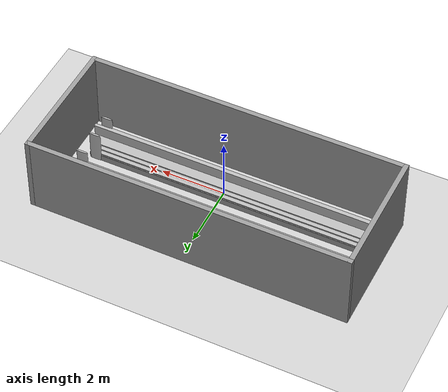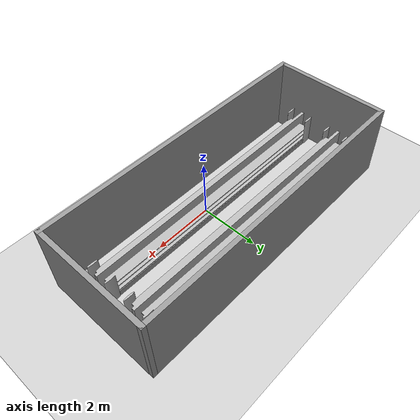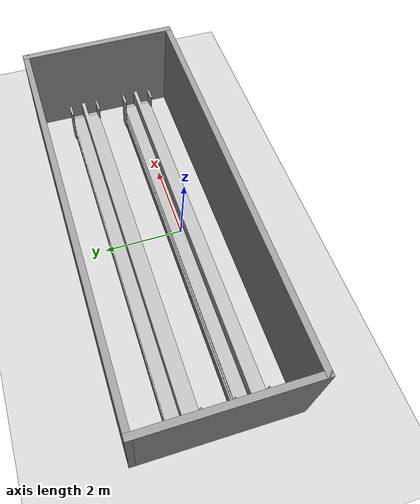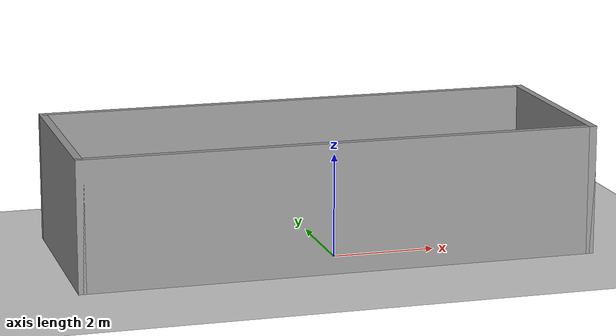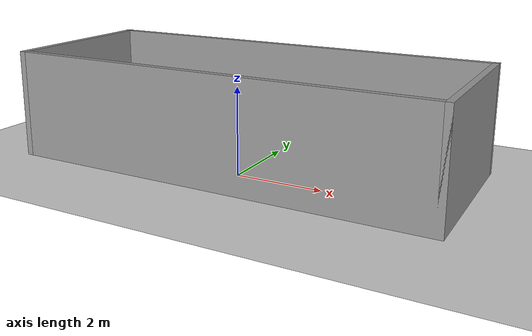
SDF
<sdf version="1.7">
 <world name="default">
  <model name="ground_plane">
   <static>1</static>
   <link name="link">
    <collision name="collision">
     <geometry><plane><normal>0 0 1</normal><size>100 100</size></plane></geometry>
     <surface><friction><ode><mu>100</mu><mu2>50</mu2></ode></friction></surface>
    </collision>
    <visual name="visual">
     <cast_shadows>0</cast_shadows>
     <geometry><plane><normal>0 0 1</normal><size>100 100</size></plane></geometry>
     <material>
      <script><uri>file://media/materials/scripts/gazebo.material</uri><name>Gazebo/Grey</name></script>
     </material>
    </visual>
   </link>
  </model>
  <light name="sun" type="directional">
   <pose>0 0 10 0 -0 0</pose>
   <diffuse>0.8 0.8 0.8 1</diffuse>
   <specular>0.2 0.2 0.2 1</specular>
   <attenuation>
    <range>1000</range>
    <constant>0.9</constant>
    <linear>0.01</linear>
    <quadratic>0.001</quadratic>
   </attenuation>
   <direction>-0.5 0.1 -0.9</direction>
   <spot><inner_angle>0</inner_angle><outer_angle>0</outer_angle><falloff>0</falloff></spot>
  </light>
  <model name="my_mesh">
   <pose>-0.390857 0.01507 0 0 -0 0</pose>
   <static>1</static>
   <link name="body">
    <visual name="visual"><geometry><mesh><uri>file://shelf.dae</uri></mesh></geometry></visual>
   </link>
  </model>
  <gravity>0 0 -9.8</gravity>
  <magnetic_field>6e-06 2.3e-05 -4.2e-05</magnetic_field>
  <atmosphere type="adiabatic"/>
  <physics type="ode">
   <max_step_size>0.001</max_step_size>
   <real_time_factor>1</real_time_factor>
   <real_time_update_rate>1000</real_time_update_rate>
  </physics>
  <scene><ambient>0.4 0.4 0.4 1</ambient><background>0.7 0.7 0.7 1</background><shadows>1</shadows></scene>
  <audio><device>default</device></audio>
  <spherical_coordinates>
   <surface_model>EARTH_WGS84</surface_model>
   <latitude_deg>0</latitude_deg>
   <longitude_deg>0</longitude_deg>
   <elevation>0</elevation>
   <heading_deg>0</heading_deg>
  </spherical_coordinates>
  <model name="Stall4x10">
   <pose>1.16004 0.83872 0 0 -0 0</pose>
   <link name="Wall_6">
    <collision name="Wall_6_Collision">
     <geometry><box><size>4 0.15 2.5</size></box></geometry>
     <pose>0 0 1.25 0 -0 0</pose>
    </collision>
    <visual name="Wall_6_Visual">
     <pose>0 0 1.25 0 -0 0</pose>
     <geometry><box><size>4 0.15 2.5</size></box></geometry>
     <material>
      <script><uri>file://media/materials/scripts/gazebo.material</uri><name>Gazebo/Grey</name></script>
      <ambient>1 1 1 1</ambient>
     </material>
     <meta><layer>0</layer></meta>
    </visual>
    <pose>-6.2376 -0 0 0 -0 -1.5708</pose>
   </link>
   <link name="Wall_7">
    <collision name="Wall_7_Collision">
     <geometry><box><size>10 0.15 2.5</size></box></geometry>
     <pose>0 0 1.25 0 -0 0</pose>
    </collision>
    <visual name="Wall_7_Visual">
     <pose>0 0 1.25 0 -0 0</pose>
     <geometry><box><size>10 0.15 2.5</size></box></geometry>
     <material>
      <script><uri>file://media/materials/scripts/gazebo.material</uri><name>Gazebo/Grey</name></script>
      <ambient>1 1 1 1</ambient>
     </material>
     <meta><layer>0</layer></meta>
    </visual>
    <pose>-1.3126 -1.925 0 0 -0 0</pose>
   </link>
   <link name="Wall_8">
    <collision name="Wall_8_Collision">
     <geometry><box><size>4 0.15 2.5</size></box></geometry>
     <pose>0 0 1.25 0 -0 0</pose>
    </collision>
    <visual name="Wall_8_Visual">
     <pose>0 0 1.25 0 -0 0</pose>
     <geometry><box><size>4 0.15 2.5</size></box></geometry>
     <material>
      <script><uri>file://media/materials/scripts/gazebo.material</uri><name>Gazebo/Grey</name></script>
      <ambient>1 1 1 1</ambient>
     </material>
     <meta><layer>0</layer></meta>
    </visual>
    <pose>3.6124 -0 0 0 -0 1.5708</pose>
   </link>
   <link name="Wall_9">
    <collision name="Wall_9_Collision">
     <geometry><box><size>10 0.15 2.5</size></box></geometry>
     <pose>0 0 1.25 0 -0 0</pose>
    </collision>
    <visual name="Wall_9_Visual">
     <pose>0 0 1.25 0 -0 0</pose>
     <geometry><box><size>10 0.15 2.5</size></box></geometry>
     <material>
      <script><uri>file://media/materials/scripts/gazebo.material</uri><name>Gazebo/Grey</name></script>
      <ambient>1 1 1 1</ambient>
     </material>
     <meta><layer>0</layer></meta>
    </visual>
    <pose>-1.3126 1.925 0 0 -0 3.14159</pose>
   </link>
   <static>1</static>
  </model>
  <model name="my_mesh_clone">
   <pose>-0.392322 1.52308 0 0 -0 0</pose>
   <static>1</static>
   <link name="body">
    <visual name="visual"><geometry><mesh><uri>file://shelf.dae</uri></mesh></geometry></visual>
    <self_collide>1</self_collide>
   </link>
  </model>
  <model name="self_col">
   <pose>-0.42535 0.766988 0 0 -0 0</pose>
   <link name="Wall_0">
    <collision name="Wall_0_Collision">
     <geometry><box><size>9.2 0.75 0.2</size></box></geometry>
     <pose>0 0 0.1 0 -0 0</pose>
    </collision>
    <visual name="Wall_0_Visual">
     <pose>0 0 0.1 0 -0 0</pose>
     <geometry><box><size>9.2 0.75 0.2</size></box></geometry>
     <material>
      <script><uri>file://media/materials/scripts/gazebo.material</uri><name>Gazebo/Grey</name></script>
      <ambient>1 1 1 1</ambient>
     </material>
     <meta><layer>0</layer></meta>
    </visual>
    <pose>0.039725 -0.746988 0 0 -0 0</pose>
   </link>
   <link name="Wall_2">
    <collision name="Wall_2_Collision">
     <geometry><box><size>9.2 0.75 0.2</size></box></geometry>
     <pose>0 0 0.1 0 -0 0</pose>
    </collision>
    <visual name="Wall_2_Visual">
     <pose>0 0 0.1 0 -0 0</pose>
     <geometry><box><size>9.2 0.75 0.2</size></box></geometry>
     <material>
      <script><uri>file://media/materials/scripts/gazebo.material</uri><name>Gazebo/Grey</name></script>
      <ambient>1 1 1 1</ambient>
     </material>
     <meta><layer>0</layer></meta>
    </visual>
    <pose>-0.039725 0.746988 0 0 -0 3.14159</pose>
   </link>
   <static>1</static>
  </model>
 </world>
</sdf>
